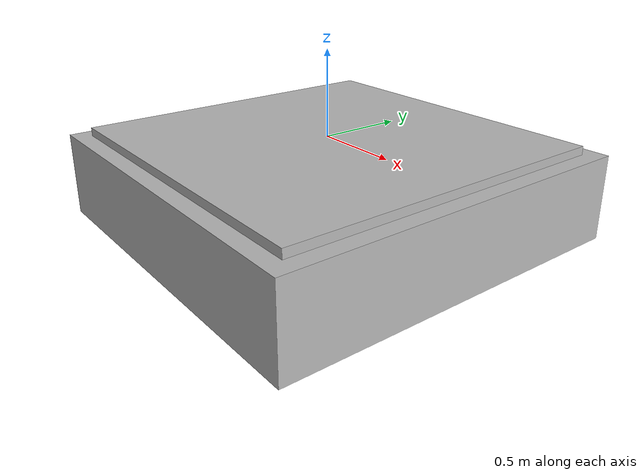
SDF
<sdf version='1.7'>
  <model name='platform'>
    <link name='platform_link'>
      <inertial>
        <pose>0 0 -0.279008 0 -0 0</pose>
        <mass>2620</mass>
        <inertia>
          <ixx>1107.16</ixx>
          <ixy>3.31494e-14</ixy>
          <ixz>5.69847e-15</ixz>
          <iyy>1107.16</iyy>
          <iyz>5.61692e-16</iyz>
          <izz>2085.47</izz>
        </inertia>
      </inertial>
      <collision name='platform_link_collision'>
        <pose>0 0 0 0 -0 0</pose>
        <geometry>
          <mesh>
            <scale>1 1 1</scale>
            <uri>model://platform/meshes/platform_link.STL</uri>
          </mesh>
        </geometry>
      </collision>
      <visual name='platform_link_visual'>
        <pose>0 0 0 0 -0 0</pose>
        <geometry>
          <mesh>
            <scale>1 1 1</scale>
            <uri>model://platform/meshes/platform_link.STL</uri>
          </mesh>
        </geometry>
      </visual>
    </link>
  </model>
</sdf>
